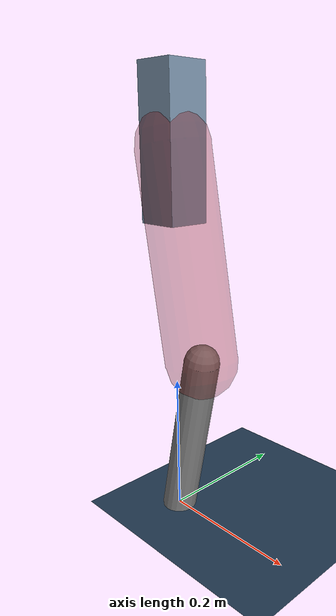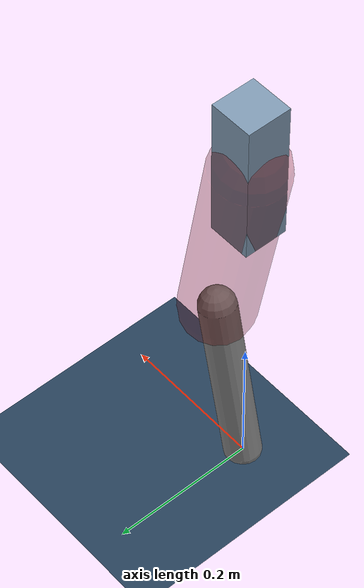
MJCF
<mujoco model="Hopper2D">
	<compiler inertiafromgeom="true" angle="radian" />
	<option timestep="0.001" integrator="implicit" cone="elliptic" solver="Newton" tolerance="1e-10" />

	<default>
		<geom contype="1" conaffinity="1" condim="3" friction="2 0.005 0.0001" solref="0.005 1" />
		<joint limited="true" damping="0.1" />
	</default>

	<asset>
		<texture name="skybox" type="skybox" builtin="gradient" rgb1=".4 .6 .8" rgb2="0 0 0" width="800" height="800" />
		<texture name="grid" type="2d" builtin="checker" rgb1=".1 .2 .3" rgb2=".2 .3 .4" width="300" height="300" mark="edge" markrgb=".2 .3 .4" />
		<material name="ground" texture="grid" texrepeat="1 1" texuniform="true" reflectance="0.1" />
		<material name="leg" rgba="0.5 0.6 0.7 1" />
	</asset>

	<worldbody>

		<geom name="floor" type="plane" size="5 5 0.25" material="ground" />

		<light directional="false" diffuse="0.8 0.8 0.8" specular="0.3 0.3 0.3" pos="0 0 2" dir="0 0 -1" />
		<light mode="targetbodycom" target="base" directional="false" diffuse="0.8 0.8 0.8" specular="0.3 0.3 0.3" pos="0 0 2" dir="0 0 -1" />

		<camera name="fixed" pos="0 -2 1" xyaxes="1 0 0 0 0 1" />
		<camera name="tracking" mode="trackcom" pos="0 -3 1" />

		<body name="root" pos="0 0 0.5274853698704998">
			<joint name="slide_x" type="slide" axis="1 0 0" range="-100 100" />
			<joint name="slide_z" type="slide" axis="0 0 1" range="0 10" />

			<body name="base" pos="0 0 0">
				<geom name="torso" type="box" size="0.03 0.03 0.1" mass="2.5949999999999998" material="leg" />

				<body name="link1" pos="0 0 0" euler="0 1.3916956777762122 0">
					<joint type="hinge" axis="0 -1 0" pos="0 0 0" name="hinge1" limited="true" range="-3.14 3.14" stiffness="0" damping="0.1" />
					<geom name="thigh" type="capsule" fromto="0 0 0 0.2888057037282055 0 0" size="0.05" rgba="0.5 0 0 0.3" mass="0.9585948296933344" />

					<body name="link2" pos="0.2888057037282055 0 0" euler="0 0.38749519855921893 0">
						<joint type="hinge" axis="0 -1 0" pos="0 0 0" name="hinge2" limited="true" range="-3.14 3.14" stiffness="0" damping="0.1" />
						<geom name="shank" type="capsule" fromto="0 0 0 0.24867966614229423 0 0" size="0.025" mass="0.4414437329138354" />

					</body>
				</body>
			</body>
		</body>
	</worldbody>

	<actuator>
		<motor name="torque1" joint="hinge1" ctrlrange="-95.30131921902685 95.30131921902685" ctrllimited="true" gear="1" />
		<motor name="torque2" joint="hinge2" ctrlrange="-61.069644227898074 61.069644227898074" ctrllimited="true" gear="1" />
	</actuator>
</mujoco>
